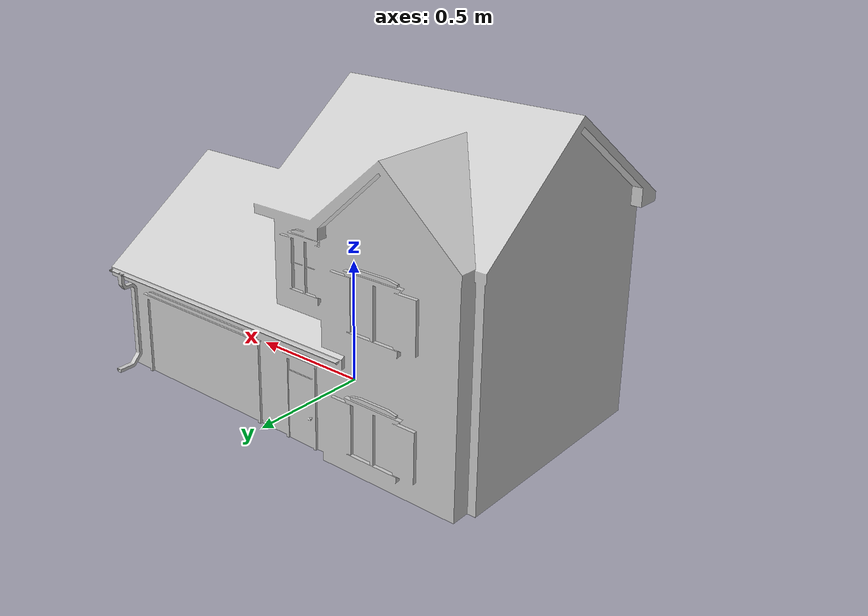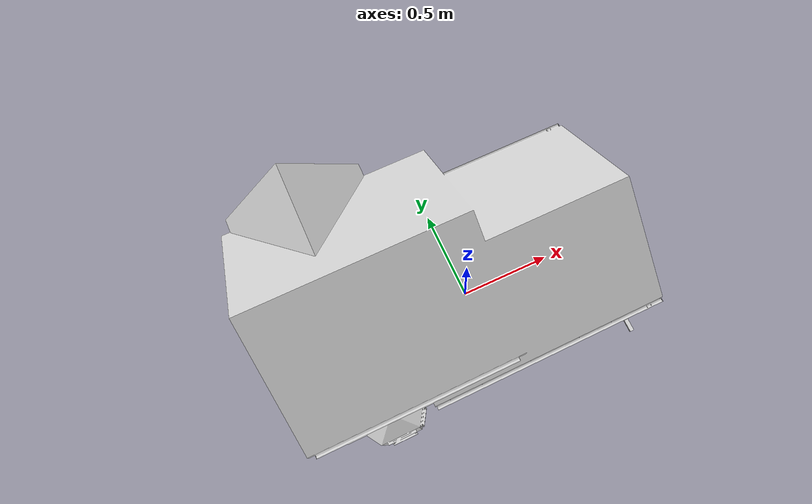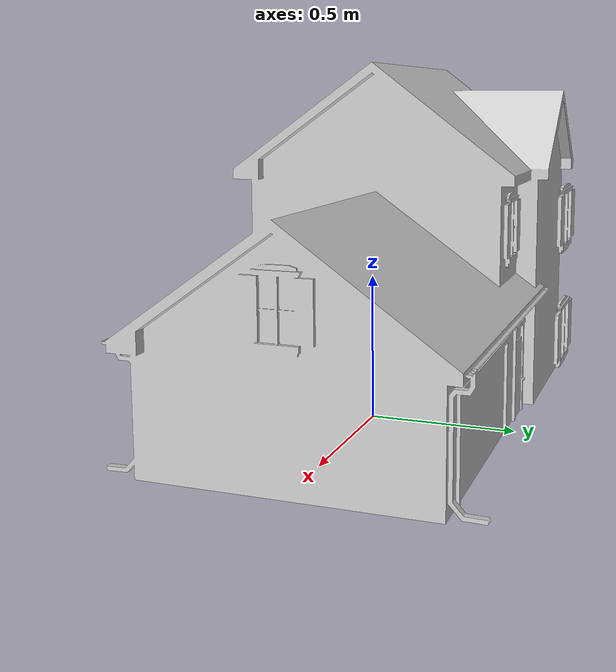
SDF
<?xml version="1.0" ?>
<sdf version="1.5">
  <model name="House 3">
    <static>true</static>
    <link name="link">
      <collision name="collision">
        <geometry>
          <mesh>
            <uri>model://house_3/meshes/house_3.dae</uri>
      <scale>0.2 0.2 0.2</scale>
            <scale>1.5 1.5 1.5</scale>
          </mesh>
        </geometry>
      </collision>
      <visual name="visual">
        <geometry>
          <mesh>
            <uri>model://house_3/meshes/house_3.dae</uri>
      <scale>0.2 0.2 0.2</scale>
            <scale>1.5 1.5 1.5</scale>
          </mesh>
        </geometry>
        <material>
          <script>
            <uri>model://house_3/materials/scripts</uri>
            <uri>model://house_3/materials/scripts</uri>
            <uri>model://house_3/materials/textures</uri>
            <uri>model://house_1/materials/textures</uri>
            <name>House_3/Diffuse</name>
          </script>
          <shader type="normal_map_tangent_space">
            <normal_map>model://house_1/materials/textures/House_1_Normal.png</normal_map>
          </shader>
        </material>
      </visual>
    </link>
  </model>
</sdf>
